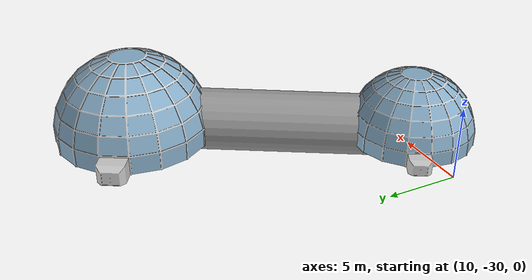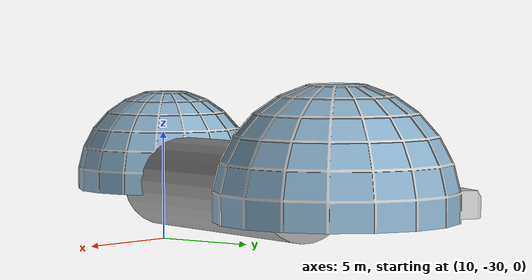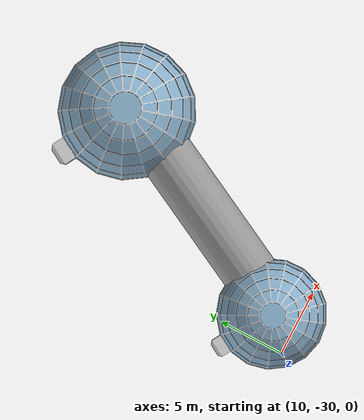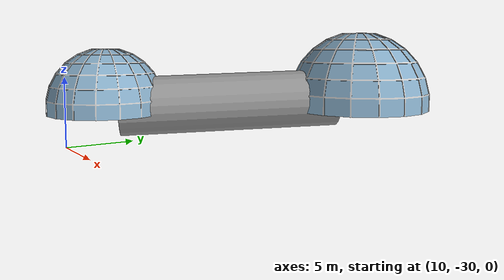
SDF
<?xml version='1.0' encoding='utf-8'?>
<sdf version="1.6">
    <model name="moon_base">
        <static>true</static>
        <pose>0 0 3.3 0 0 0</pose>
        <link name="dome1">
            <pose>20 -12 -0.7 0 0 0.5</pose>
            <visual name="dome1_visual">
                <geometry>
                    <mesh>
                        <uri>model://moon_base/resources/dome.dae</uri>
                        <scale>5 5 5</scale>
                    </mesh>
                </geometry>
            </visual>
            <collision name="dome1_collision">
                <geometry>
                    <mesh>
                        <uri>model://moon_base/resources/dome.dae</uri>
                        <scale>4 4 4</scale>
                    </mesh>
                </geometry>
            </collision>
        </link>
        <link name="dome2">
            <pose>12 -28 -0.7 0 0 0.5</pose>
            <visual name="dome2_visual">
                <geometry>
                    <mesh>
                        <uri>model://moon_base/resources/dome.dae</uri>
                        <scale>4 4 4</scale>
                    </mesh>
                </geometry>
            </visual>
            <collision name="dome2_collision">
                <geometry>
                    <mesh>
                        <uri>model://moon_base/resources/dome.dae</uri>
                        <scale>5 5 5</scale>
                    </mesh>
                </geometry>
            </collision>
        </link>
        <link name="connector_tunnel">
            <pose>16.5 -20.5 0 -1.1 1.5 0</pose>
            <visual name="connector_tunnel_visual">
                <geometry>
                    <cylinder>
                        <radius>2</radius>
                        <length>15</length>
                    </cylinder>
                </geometry>
                <material>
                    <script>
                        <uri>file://media/materials/scripts/gazebo.material</uri>
                        <name>Gazebo/Gray</name>
                    </script>
                </material>
            </visual>
            <collision name="connector_tunnel_collision">
                <geometry>
                    <cylinder>
                        <radius>2</radius>
                        <length>15</length>
                    </cylinder>
                </geometry>
                <surface>
                    <friction>
                    <ode>
                        <mu>50</mu>
                    </ode>
                    </friction>
                </surface>
            </collision>
        </link>
    </model>
</sdf>
